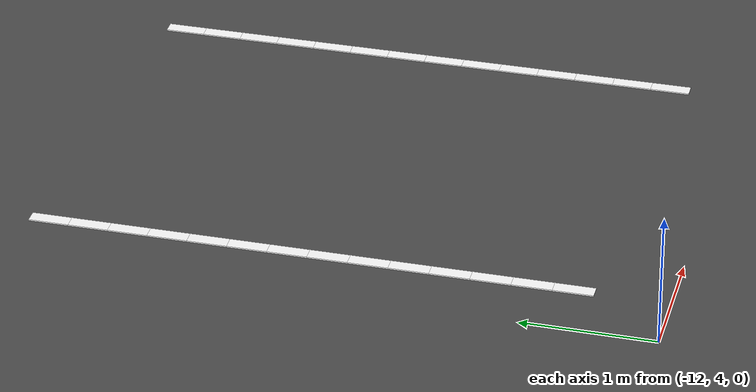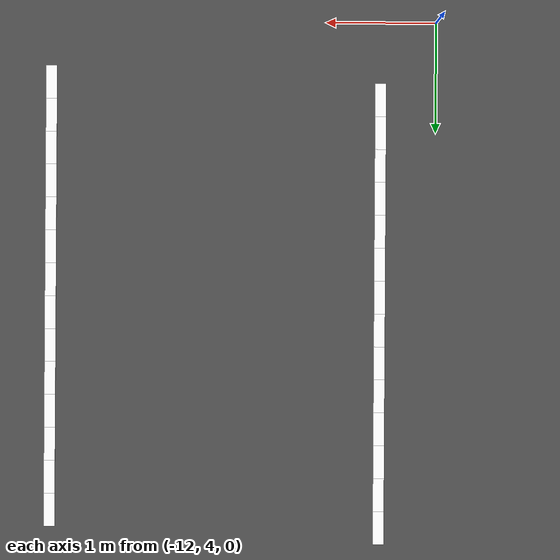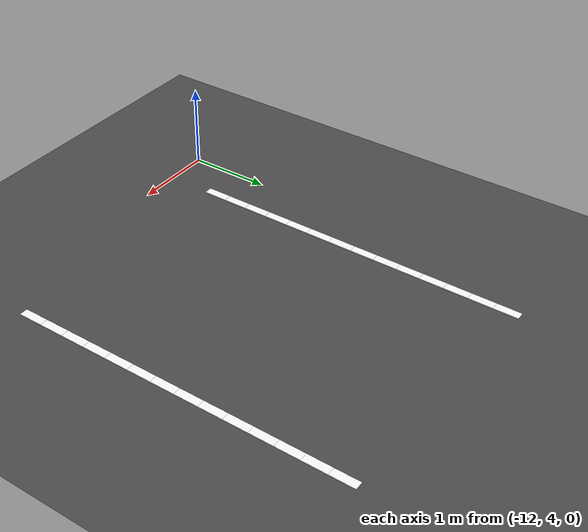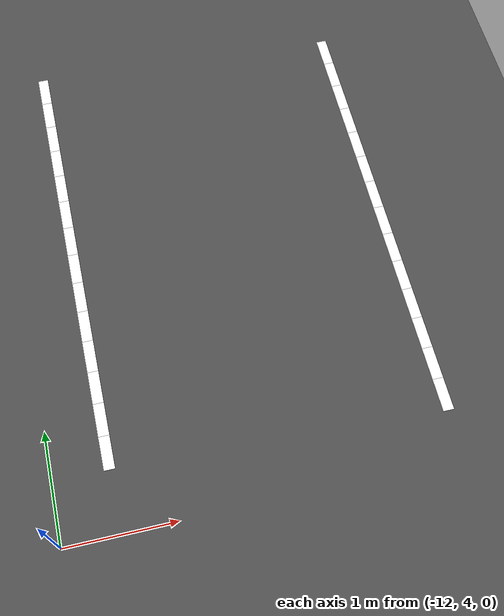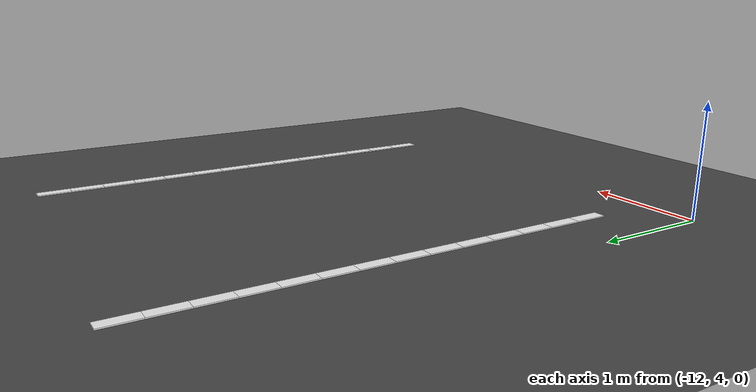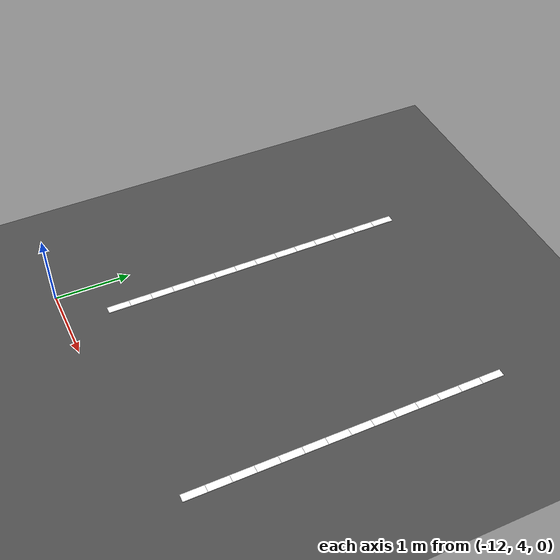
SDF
<sdf version="1.8">
 <world name="igvc_autonav">
  <model name="ground_plane">
   <static>true</static>
   <link name="link">
    <collision name="collision">
     <geometry><plane><normal>0 0 1</normal><size>60 60</size></plane></geometry>
     <surface><friction><ode><mu>0.8</mu><mu2>0.8</mu2></ode></friction></surface>
    </collision>
    <visual name="visual">
     <geometry><plane><normal>0 0 1</normal><size>60 60</size></plane></geometry>
     <material>
      <ambient>0.25 0.25 0.25 1</ambient>
      <diffuse>0.3 0.3 0.3 1</diffuse>
      <specular>0.1 0.1 0.1 1</specular>
     </material>
    </visual>
   </link>
  </model>
  <model name="lane_inner_165">
   <static>true</static>
   <pose>-8.5000 8.4500 0.01 0 0 -1.5708</pose>
   <link name="link">
    <visual name="visual">
     <geometry><box><size>0.3 0.1 0.01</size></box></geometry>
     <material><ambient>1 1 1 1</ambient><diffuse>1 1 1 1</diffuse><emissive>1 1 1 1</emissive></material>
    </visual>
   </link>
  </model>
  <model name="lane_inner_166">
   <static>true</static>
   <pose>-8.5000 8.1500 0.01 0 0 -1.5708</pose>
   <link name="link">
    <visual name="visual">
     <geometry><box><size>0.3 0.1 0.01</size></box></geometry>
     <material><ambient>1 1 1 1</ambient><diffuse>1 1 1 1</diffuse><emissive>1 1 1 1</emissive></material>
    </visual>
   </link>
  </model>
  <model name="lane_inner_167">
   <static>true</static>
   <pose>-8.5000 7.8500 0.01 0 0 -1.5708</pose>
   <link name="link">
    <visual name="visual">
     <geometry><box><size>0.3 0.1 0.01</size></box></geometry>
     <material><ambient>1 1 1 1</ambient><diffuse>1 1 1 1</diffuse><emissive>1 1 1 1</emissive></material>
    </visual>
   </link>
  </model>
  <model name="lane_inner_168">
   <static>true</static>
   <pose>-8.5000 7.5500 0.01 0 0 -1.5708</pose>
   <link name="link">
    <visual name="visual">
     <geometry><box><size>0.3 0.1 0.01</size></box></geometry>
     <material><ambient>1 1 1 1</ambient><diffuse>1 1 1 1</diffuse><emissive>1 1 1 1</emissive></material>
    </visual>
   </link>
  </model>
  <model name="lane_inner_169">
   <static>true</static>
   <pose>-8.5000 7.2500 0.01 0 0 -1.5708</pose>
   <link name="link">
    <visual name="visual">
     <geometry><box><size>0.3 0.1 0.01</size></box></geometry>
     <material><ambient>1 1 1 1</ambient><diffuse>1 1 1 1</diffuse><emissive>1 1 1 1</emissive></material>
    </visual>
   </link>
  </model>
  <model name="lane_inner_170">
   <static>true</static>
   <pose>-8.5000 6.9500 0.01 0 0 -1.5708</pose>
   <link name="link">
    <visual name="visual">
     <geometry><box><size>0.3 0.1 0.01</size></box></geometry>
     <material><ambient>1 1 1 1</ambient><diffuse>1 1 1 1</diffuse><emissive>1 1 1 1</emissive></material>
    </visual>
   </link>
  </model>
  <model name="lane_inner_171">
   <static>true</static>
   <pose>-8.5000 6.6500 0.01 0 0 -1.5708</pose>
   <link name="link">
    <visual name="visual">
     <geometry><box><size>0.3 0.1 0.01</size></box></geometry>
     <material><ambient>1 1 1 1</ambient><diffuse>1 1 1 1</diffuse><emissive>1 1 1 1</emissive></material>
    </visual>
   </link>
  </model>
  <model name="lane_inner_172">
   <static>true</static>
   <pose>-8.5000 6.3500 0.01 0 0 -1.5708</pose>
   <link name="link">
    <visual name="visual">
     <geometry><box><size>0.3 0.1 0.01</size></box></geometry>
     <material><ambient>1 1 1 1</ambient><diffuse>1 1 1 1</diffuse><emissive>1 1 1 1</emissive></material>
    </visual>
   </link>
  </model>
  <model name="lane_inner_173">
   <static>true</static>
   <pose>-8.5000 6.0500 0.01 0 0 -1.5708</pose>
   <link name="link">
    <visual name="visual">
     <geometry><box><size>0.3 0.1 0.01</size></box></geometry>
     <material><ambient>1 1 1 1</ambient><diffuse>1 1 1 1</diffuse><emissive>1 1 1 1</emissive></material>
    </visual>
   </link>
  </model>
  <model name="lane_inner_174">
   <static>true</static>
   <pose>-8.5000 5.7500 0.01 0 0 -1.5708</pose>
   <link name="link">
    <visual name="visual">
     <geometry><box><size>0.3 0.1 0.01</size></box></geometry>
     <material><ambient>1 1 1 1</ambient><diffuse>1 1 1 1</diffuse><emissive>1 1 1 1</emissive></material>
    </visual>
   </link>
  </model>
  <model name="lane_inner_175">
   <static>true</static>
   <pose>-8.5000 5.4500 0.01 0 0 -1.5708</pose>
   <link name="link">
    <visual name="visual">
     <geometry><box><size>0.3 0.1 0.01</size></box></geometry>
     <material><ambient>1 1 1 1</ambient><diffuse>1 1 1 1</diffuse><emissive>1 1 1 1</emissive></material>
    </visual>
   </link>
  </model>
  <model name="lane_inner_176">
   <static>true</static>
   <pose>-8.5000 5.1500 0.01 0 0 -1.5708</pose>
   <link name="link">
    <visual name="visual">
     <geometry><box><size>0.3 0.1 0.01</size></box></geometry>
     <material><ambient>1 1 1 1</ambient><diffuse>1 1 1 1</diffuse><emissive>1 1 1 1</emissive></material>
    </visual>
   </link>
  </model>
  <model name="lane_inner_177">
   <static>true</static>
   <pose>-8.5000 4.8500 0.01 0 0 -1.5708</pose>
   <link name="link">
    <visual name="visual">
     <geometry><box><size>0.3 0.1 0.01</size></box></geometry>
     <material><ambient>1 1 1 1</ambient><diffuse>1 1 1 1</diffuse><emissive>1 1 1 1</emissive></material>
    </visual>
   </link>
  </model>
  <model name="lane_inner_178">
   <static>true</static>
   <pose>-8.5000 4.5500 0.01 0 0 -1.5708</pose>
   <link name="link">
    <visual name="visual">
     <geometry><box><size>0.3 0.1 0.01</size></box></geometry>
     <material><ambient>1 1 1 1</ambient><diffuse>1 1 1 1</diffuse><emissive>1 1 1 1</emissive></material>
    </visual>
   </link>
  </model>
  <model name="lane_outer_197">
   <static>true</static>
   <pose>-11.5000 8.6000 0.01 0 0 -1.5708</pose>
   <link name="link">
    <visual name="visual">
     <geometry><box><size>0.3 0.1 0.01</size></box></geometry>
     <material><ambient>1 1 1 1</ambient><diffuse>1 1 1 1</diffuse><emissive>1 1 1 1</emissive></material>
    </visual>
   </link>
  </model>
  <model name="lane_outer_198">
   <static>true</static>
   <pose>-11.5000 8.3000 0.01 0 0 -1.5708</pose>
   <link name="link">
    <visual name="visual">
     <geometry><box><size>0.3 0.1 0.01</size></box></geometry>
     <material><ambient>1 1 1 1</ambient><diffuse>1 1 1 1</diffuse><emissive>1 1 1 1</emissive></material>
    </visual>
   </link>
  </model>
  <model name="lane_outer_199">
   <static>true</static>
   <pose>-11.5000 8.0000 0.01 0 0 -1.5708</pose>
   <link name="link">
    <visual name="visual">
     <geometry><box><size>0.3 0.1 0.01</size></box></geometry>
     <material><ambient>1 1 1 1</ambient><diffuse>1 1 1 1</diffuse><emissive>1 1 1 1</emissive></material>
    </visual>
   </link>
  </model>
  <model name="lane_outer_200">
   <static>true</static>
   <pose>-11.5000 7.7000 0.01 0 0 -1.5708</pose>
   <link name="link">
    <visual name="visual">
     <geometry><box><size>0.3 0.1 0.01</size></box></geometry>
     <material><ambient>1 1 1 1</ambient><diffuse>1 1 1 1</diffuse><emissive>1 1 1 1</emissive></material>
    </visual>
   </link>
  </model>
  <model name="lane_outer_201">
   <static>true</static>
   <pose>-11.5000 7.4000 0.01 0 0 -1.5708</pose>
   <link name="link">
    <visual name="visual">
     <geometry><box><size>0.3 0.1 0.01</size></box></geometry>
     <material><ambient>1 1 1 1</ambient><diffuse>1 1 1 1</diffuse><emissive>1 1 1 1</emissive></material>
    </visual>
   </link>
  </model>
  <model name="lane_outer_202">
   <static>true</static>
   <pose>-11.5000 7.1000 0.01 0 0 -1.5708</pose>
   <link name="link">
    <visual name="visual">
     <geometry><box><size>0.3 0.1 0.01</size></box></geometry>
     <material><ambient>1 1 1 1</ambient><diffuse>1 1 1 1</diffuse><emissive>1 1 1 1</emissive></material>
    </visual>
   </link>
  </model>
  <model name="lane_outer_203">
   <static>true</static>
   <pose>-11.5000 6.8000 0.01 0 0 -1.5708</pose>
   <link name="link">
    <visual name="visual">
     <geometry><box><size>0.3 0.1 0.01</size></box></geometry>
     <material><ambient>1 1 1 1</ambient><diffuse>1 1 1 1</diffuse><emissive>1 1 1 1</emissive></material>
    </visual>
   </link>
  </model>
  <model name="lane_outer_204">
   <static>true</static>
   <pose>-11.5000 6.5000 0.01 0 0 -1.5708</pose>
   <link name="link">
    <visual name="visual">
     <geometry><box><size>0.3 0.1 0.01</size></box></geometry>
     <material><ambient>1 1 1 1</ambient><diffuse>1 1 1 1</diffuse><emissive>1 1 1 1</emissive></material>
    </visual>
   </link>
  </model>
  <model name="lane_outer_205">
   <static>true</static>
   <pose>-11.5000 6.2000 0.01 0 0 -1.5708</pose>
   <link name="link">
    <visual name="visual">
     <geometry><box><size>0.3 0.1 0.01</size></box></geometry>
     <material><ambient>1 1 1 1</ambient><diffuse>1 1 1 1</diffuse><emissive>1 1 1 1</emissive></material>
    </visual>
   </link>
  </model>
  <model name="lane_outer_206">
   <static>true</static>
   <pose>-11.5000 5.9000 0.01 0 0 -1.5708</pose>
   <link name="link">
    <visual name="visual">
     <geometry><box><size>0.3 0.1 0.01</size></box></geometry>
     <material><ambient>1 1 1 1</ambient><diffuse>1 1 1 1</diffuse><emissive>1 1 1 1</emissive></material>
    </visual>
   </link>
  </model>
  <model name="lane_outer_207">
   <static>true</static>
   <pose>-11.5000 5.6000 0.01 0 0 -1.5708</pose>
   <link name="link">
    <visual name="visual">
     <geometry><box><size>0.3 0.1 0.01</size></box></geometry>
     <material><ambient>1 1 1 1</ambient><diffuse>1 1 1 1</diffuse><emissive>1 1 1 1</emissive></material>
    </visual>
   </link>
  </model>
  <model name="lane_outer_208">
   <static>true</static>
   <pose>-11.5000 5.3000 0.01 0 0 -1.5708</pose>
   <link name="link">
    <visual name="visual">
     <geometry><box><size>0.3 0.1 0.01</size></box></geometry>
     <material><ambient>1 1 1 1</ambient><diffuse>1 1 1 1</diffuse><emissive>1 1 1 1</emissive></material>
    </visual>
   </link>
  </model>
  <model name="lane_outer_209">
   <static>true</static>
   <pose>-11.5000 5.0000 0.01 0 0 -1.5708</pose>
   <link name="link">
    <visual name="visual">
     <geometry><box><size>0.3 0.1 0.01</size></box></geometry>
     <material><ambient>1 1 1 1</ambient><diffuse>1 1 1 1</diffuse><emissive>1 1 1 1</emissive></material>
    </visual>
   </link>
  </model>
  <model name="lane_outer_210">
   <static>true</static>
   <pose>-11.5000 4.7000 0.01 0 0 -1.5708</pose>
   <link name="link">
    <visual name="visual">
     <geometry><box><size>0.3 0.1 0.01</size></box></geometry>
     <material><ambient>1 1 1 1</ambient><diffuse>1 1 1 1</diffuse><emissive>1 1 1 1</emissive></material>
    </visual>
   </link>
  </model>
 </world>
</sdf>
